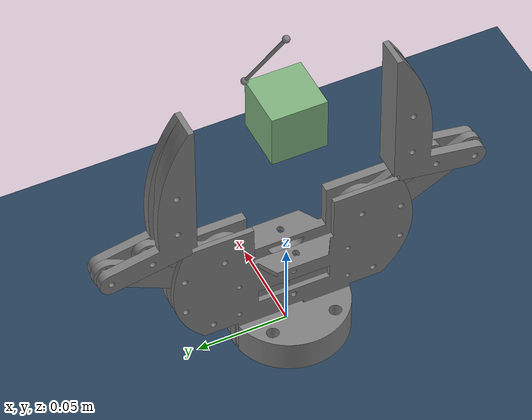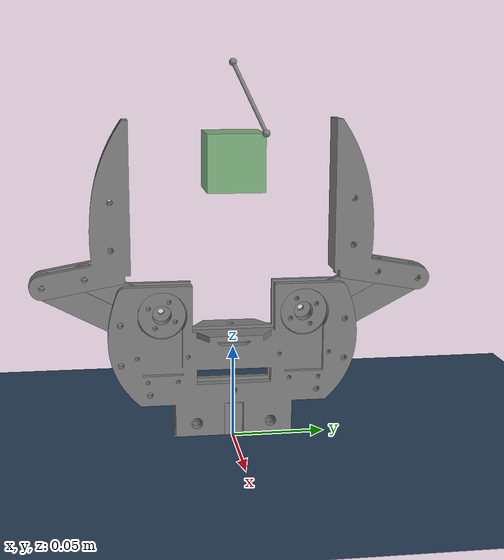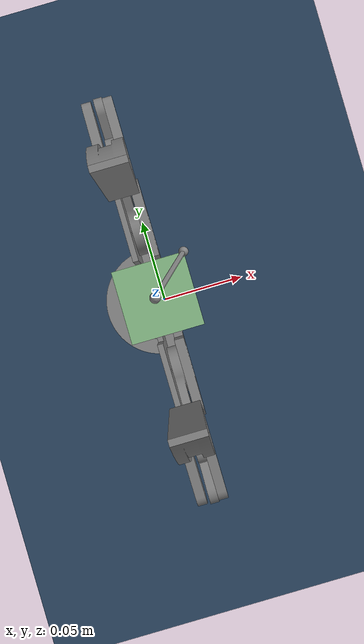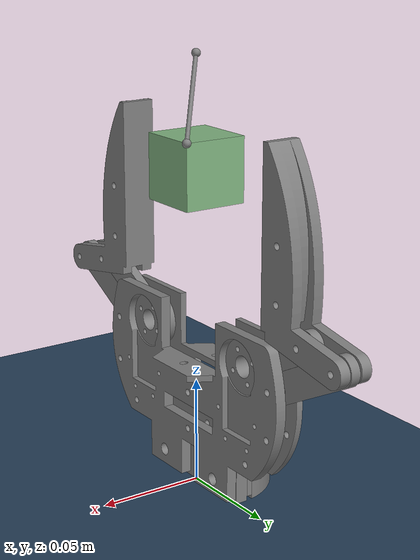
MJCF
<mujoco model="magpie scene">
  <include file="magpie.xml"/>

  <!-- Add some fluid viscosity to prevent the hanging box from jiggling forever -->
  <option viscosity="0.1"/>

  <statistic center="0 0 0.05" extent="0.3"/>

  <visual>
    <headlight diffuse="0.6 0.6 0.6" ambient="0.3 0.3 0.3" specular="0 0 0"/>
    <rgba haze="0.15 0.25 0.35 1"/>
    <global azimuth="60" elevation="-20"/>
  </visual>

  <asset>
    <texture type="skybox" builtin="gradient" rgb1="0.3 0.5 0.7" rgb2="0 0 0" width="512" height="3072"/>
    <texture type="2d" name="groundplane" builtin="checker" mark="edge" rgb1="0.2 0.3 0.4" rgb2="0.1 0.2 0.3"
      markrgb="0.8 0.8 0.8" width="300" height="300"/>
    <material name="groundplane" texture="groundplane" texuniform="true" texrepeat="5 5" reflectance="0.2"/>
  </asset>

  <worldbody>
    <light pos="0 0 1"/>
    <light pos="0 -0.2 1" dir="0 0.2 -0.8" directional="true"/>
    <geom name="floor" size="0 0 0.05" type="plane" material="groundplane"/>
    <site size="0.002" pos="0 0 0.2" name="anchor"/>
    <body name="object" pos="0 0 0.15">
      <freejoint/>
      <geom type="box" size="0.015 0.015 0.015" rgba=".5 .7 .5 1" friction=".5" priority="1"/>
      <site size="0.002" pos="0.015 0.015 0.015" name="hook"/>
    </body>
  </worldbody>

  <tendon>
    <spatial limited="true" range="0 0.02" width="0.001">
      <site site="hook"/>
      <site site="anchor"/>
    </spatial>
  </tendon>
</mujoco>

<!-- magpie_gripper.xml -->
<!-- Magpie gripper body hierarchy - designed to be included in other models -->
<!-- Include this inside a parent body to attach the gripper -->
<!-- Requires mesh assets: magpie_mount, magpie_base_bot, magpie_base_top, -->
<!--   magpie_left_crank, magpie_right_crank, magpie_left_finger, magpie_right_finger, -->
<!--   magpie_left_rocker, magpie_right_rocker -->

<body name="mount" gravcomp="1">
  <site name="eeff" pos="-0.004 0 0.193" group="3"/>
  <geom type="mesh" class="visual" mesh="magpie_mount" xyaxes="0 -1 0 1 0 0"/>
  <geom type="mesh" class="collision" mesh="magpie_mount" xyaxes="0 -1 0 1 0 0"/>
  <body name="base_bot" gravcomp="1">
    <geom type="mesh" class="visual" mesh="magpie_base_bot" xyaxes="0 -1 0 1 0 0"/>
    <geom type="mesh" class="collision" mesh="magpie_base_bot" xyaxes="0 -1 0 1 0 0"/>
    <body name="base_top" gravcomp="1">
      <geom type="mesh" class="visual" mesh="magpie_base_top" xyaxes="0 -1 0 1 0 0"/>
      <geom type="mesh" class="collision" mesh="magpie_base_top" xyaxes="0 -1 0 1 0 0"/>

      <!-- Left 4-bar mechanism: base_top -> crank -> finger -> rocker -->
      <!-- Pivots: 1=crank-base(0.00175,0.038,0.069), 2=finger-inner(-0.00675,0.077824,0.089953) -->
      <!--         3=finger-outer(-0.00675,0.099824,0.085954), 4=rocker-base(-0.00075,0.060,0.065) -->
      <body name="left_crank" gravcomp="1" pos="0.00175 0.038 0.069">
        <joint name="left_hinge_1" pos="0 0 0" axis="1 0 0" range="-0.035 2.05"/>
        <geom type="mesh" class="visual" mesh="magpie_left_crank" pos="-0.00175 -0.038 -0.069" xyaxes="0 -1 0 1 0 0"/>
        <geom type="mesh" class="collision" mesh="magpie_left_crank" pos="-0.00175 -0.038 -0.069" xyaxes="0 -1 0 1 0 0"/>
        <body name="left_finger_combined" gravcomp="1" pos="-0.0085 0.039824 0.020953">
          <joint name="left_hinge_2" pos="0 0 0" axis="1 0 0"/>
          <geom type="mesh" class="visual" mesh="magpie_left_finger" pos="0.00675 -0.077824 -0.089953" xyaxes="0 -1 0 1 0 0"/>
          <geom type="mesh" class="collision" mesh="magpie_left_finger" pos="0.00675 -0.077824 -0.089953" xyaxes="0 -1 0 1 0 0"/>
            <geom class="pad_box1" name="left_pad1"/>
            <geom class="pad_box2" name="left_pad2"/>
            <geom class="pad_box3" name="left_pad3"/>
            <geom class="pad_box4" name="left_pad4"/>
            <site name="touch_left" type="box" pos="0.003 -0.02227 0.0413" size="0.008 0.0016 0.04" rgba="1 0 0 0.5" group="4" />
            <site name="tip_left" type="box" pos="0.003 -0.02027 0.0763" size="0.008 0.0026 0.005" rgba="1 0 0 0.5" group="4" />

          <body name="left_rocker" gravcomp="1" pos="0 0.022 -0.003999">
            <joint name="left_hinge_3" pos="0 0 0" axis="1 0 0"/>
            <geom type="mesh" class="visual" mesh="magpie_left_rocker" pos="0.00675 -0.099824 -0.085954" xyaxes="0 -1 0 1 0 0"/>
            <geom type="mesh" class="collision" mesh="magpie_left_rocker" pos="0.00675 -0.099824 -0.085954" xyaxes="0 -1 0 1 0 0"/>
          </body>
        </body>
      </body>

      <!-- Right 4-bar mechanism: base_top -> crank -> finger -> rocker -->
      <!-- Pivots: 1=crank-base(0.00175,-0.038,0.069), 2=finger-inner(-0.00675,-0.077824,0.089953) -->
      <!--         3=finger-outer(-0.00675,-0.099824,0.085954), 4=rocker-base(-0.00075,-0.060,0.065) -->
      <body name="right_crank" gravcomp="1" pos="0.00175 -0.038 0.069">
        <joint name="right_hinge_1" pos="0 0 0" axis="1 0 0" range="-2.05 0.035"/>
        <geom type="mesh" class="visual" mesh="magpie_right_crank" pos="-0.00175 0.038 -0.069" xyaxes="0 -1 0 1 0 0"/>
        <geom type="mesh" class="collision" mesh="magpie_right_crank" pos="-0.00175 0.038 -0.069" xyaxes="0 -1 0 1 0 0"/>
        <body name="right_finger_combined" gravcomp="1" pos="-0.0085 -0.039824 0.020953">
          <joint name="right_hinge_2" pos="0 0 0" axis="1 0 0"/>
          <geom type="mesh" class="visual" mesh="magpie_right_finger" pos="0.00675 0.077824 -0.089953" xyaxes="0 -1 0 1 0 0"/>
          <geom type="mesh" class="collision" mesh="magpie_right_finger" pos="0.00675 0.077824 -0.089953" xyaxes="0 -1 0 1 0 0"/>
          <geom class="pad_box5" name="right_pad1"/>
          <geom class="pad_box6" name="right_pad2"/>
          <geom class="pad_box7" name="right_pad3"/>
          <geom class="pad_box8" name="right_pad4"/>
          <site name="touch_right" type="box" pos="0.003 0.02227 0.0413" size="0.008 0.0016 0.04" rgba="0 1 0 0.5" group="4" />
          <site name="tip_right" type="box" pos="0.003 0.02027 0.0763" size="0.008 0.0026 0.005" rgba="0 1 0 0.5" group="4" />

          <body name="right_rocker" gravcomp="1" pos="0 -0.022 -0.003999">
            <joint name="right_hinge_3" pos="0 0 0" axis="1 0 0"/>
            <geom type="mesh" class="visual" mesh="magpie_right_rocker" pos="0.00675 0.099824 -0.085954" xyaxes="0 -1 0 1 0 0"/>
            <geom type="mesh" class="collision" mesh="magpie_right_rocker" pos="0.00675 0.099824 -0.085954" xyaxes="0 -1 0 1 0 0"/>
          </body>
        </body>
      </body>

    </body>
  </body>
</body>

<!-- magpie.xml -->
<mujoco model="magpie_gripper">
  <compiler meshdir="../meshes/magpie/" autolimits="true"/>

  <visual>
    <headlight ambient=".4 .4 .4" diffuse=".8 .8 .8" specular="0.1 0.1 0.1"/>
    <map znear=".01"/>
    <quality shadowsize="2048"/>
    <global elevation="-15"/>
  </visual>

  <asset>
    <texture name="blue_grid" type="2d" builtin="checker" rgb1=".02 .14 .44" rgb2=".27 .55 1" width="300" height="300" mark="edge" markrgb="1 1 1"/>
    <material name="blue_grid" texture="blue_grid" texrepeat="1 1" texuniform="true" reflectance=".2"/>

    <texture name="grey_grid" type="2d" builtin="checker" rgb1=".26 .26 .26" rgb2=".6 .6 .6" width="300" height="300" mark="edge" markrgb="1 1 1"/>
    <material name="grey_grid" texture="grey_grid" texrepeat="1 1" texuniform="true" reflectance=".2"/>
    <texture name="skybox" type="skybox" builtin="gradient" rgb1=".66 .79 1" rgb2=".9 .91 .93" width="800" height="800"/>

    <!-- Magpie gripper meshes (prefixed names for include compatibility) -->
    <mesh class="magpie" name="magpie_mount" file="mount.stl" scale="0.001 0.001 0.001"/>
    <mesh class="magpie" name="magpie_base_bot" file="base_bot.stl" scale="0.001 0.001 0.001"/>
    <mesh class="magpie" name="magpie_base_top" file="base_top.stl" scale="0.001 0.001 0.001"/>
    <mesh class="magpie" name="magpie_left_crank" file="left_crank.stl" scale="0.001 0.001 0.001"/>
    <mesh class="magpie" name="magpie_right_crank" file="right_crank.stl" scale="0.001 0.001 0.001"/>
    <mesh class="magpie" name="magpie_left_finger" file="left_finger_combined.stl" scale="0.001 0.001 0.001"/>
    <mesh class="magpie" name="magpie_right_finger" file="right_finger_combined.stl" scale="0.001 0.001 0.001"/>
    <mesh class="magpie" name="magpie_left_rocker" file="left_rocker.stl" scale="0.001 0.001 0.001"/>
    <mesh class="magpie" name="magpie_right_rocker" file="right_rocker.stl" scale="0.001 0.001 0.001"/>
  </asset>

  <default>
    <default class="magpie">
      <material specular="0.5" shininess="0.25"/>
      <default class="visual">
        <geom type="mesh" contype="0" conaffinity="0" group="2"/>
      </default>
      <default class="collision">
        <geom type="capsule" group="3"/>
        <default class="eef_collision">
          <geom type="cylinder"/>
        </default>

        <!-- left finger collision boxes -->
        <default class="pad_box1">
          <geom mass="0" type="box" pos="0.003 -0.02227 0.0113" size="0.008 0.0015 0.01" friction="0.6"
            solimp="0.95 0.99 0.001" solref="0.004 1" priority="1" rgba="0.55 0.55 0.55 1"/>
        </default>
        <default class="pad_box2">
          <geom mass="0" type="box" pos="0.003 -0.02227 0.0313" size="0.008 0.0015 0.01" friction="0.6"
            solimp="0.95 0.99 0.001" solref="0.004 1" priority="1" rgba="0.45 0.45 0.45 1"/>
        </default>
        <default class="pad_box3">
          <geom mass="0" type="box" pos="0.003 -0.02227 0.0513" size="0.008 0.0015 0.01" friction="0.6"
            solimp="0.95 0.99 0.001" solref="0.004 1" priority="1" rgba="0.55 0.55 0.55 1"/>
        </default>
        <default class="pad_box4">
          <geom mass="0" type="box" pos="0.003 -0.02227 0.0713" size="0.008 0.0015 0.01" friction="0.6"
            solimp="0.95 0.99 0.001" solref="0.004 1" priority="1" rgba="0.45 0.45 0.45 1"/>
        </default>

        <!-- right finger collision boxes -->
        <default class="pad_box5">
          <geom mass="0" type="box" pos="0.003 0.02227 0.0113" size="0.008 0.0015 0.01" friction="0.6"
            solimp="0.95 0.99 0.001" solref="0.004 1" priority="1" rgba="0.55 0.55 0.55 1"/>
        </default>
        <default class="pad_box6">
          <geom mass="0" type="box" pos="0.003 0.02227 0.0313" size="0.008 0.0015 0.01" friction="0.6"
            solimp="0.95 0.99 0.001" solref="0.004 1" priority="1" rgba="0.45 0.45 0.45 1"/>
        </default>
        <default class="pad_box7">
          <geom mass="0" type="box" pos="0.003 0.02227 0.0513" size="0.008 0.0015 0.01" friction="0.6"
            solimp="0.95 0.99 0.001" solref="0.004 1" priority="1" rgba="0.55 0.55 0.55 1"/>
        </default>
        <default class="pad_box8">
          <geom mass="0" type="box" pos="0.003 0.02227 0.0713" size="0.008 0.0015 0.01" friction="0.6"
            solimp="0.95 0.99 0.001" solref="0.004 1" priority="1" rgba="0.45 0.45 0.45 1"/>
        </default>

      </default>
      <site size="0.001" rgba="0.5 0.5 0.5 0.3" group="4"/>
    </default>
  </default>

  <worldbody>
    <!-- Include the gripper body hierarchy -->
    <include file="magpie_gripper.xml"/>
  </worldbody>

  <equality>
    <!-- Connect constraints close the 4-bar loop by pinning rocker to base at pivot4 (rocker-base) -->
    <!-- Anchor is in body1 (base_top) frame, from CAD with axis transform -->
    <!-- Left:  CAD (-60.0, -0.750, 65.0) -> MuJoCo (-0.00075, 0.060, 0.065) -->
    <!-- Right: CAD (60.0, -0.750, 65.0)  -> MuJoCo (-0.00075, -0.060, 0.065) -->
    <connect name="left_4bar_close" active="true" body1="base_top" body2="left_rocker" anchor="-0.00075 0.060 0.065"/>
    <connect name="right_4bar_close" active="true" body1="base_top" body2="right_rocker" anchor="-0.00075 -0.060 0.065"/>
  </equality>

  <actuator>
    <!-- Position actuators drive the crank (hinge_1) to control finger position -->
    <!-- ctrlrange maps to joint range; kp is position gain -->
    <position name="left_finger_actuator" joint="left_hinge_1" ctrlrange="-0.035 2.70" kp="10"/>
    <position name="right_finger_actuator" joint="right_hinge_1" ctrlrange="-2.70 0.035" kp="10"/>
  </actuator>
</mujoco>
